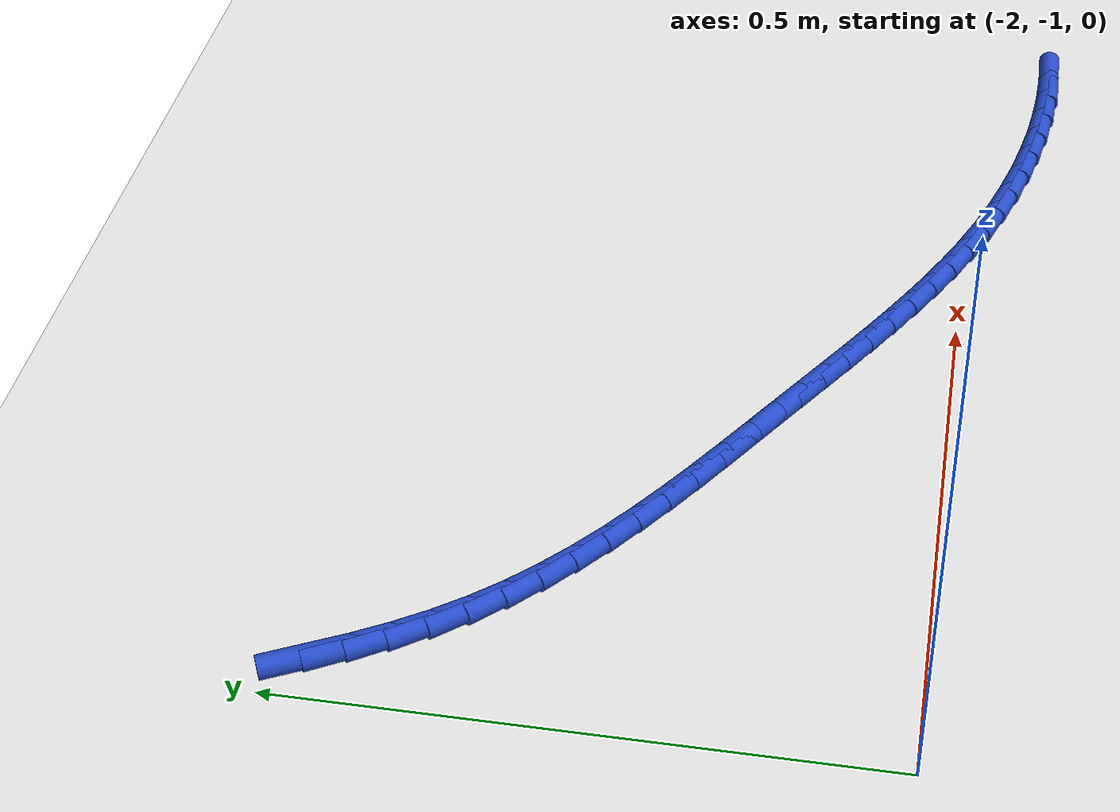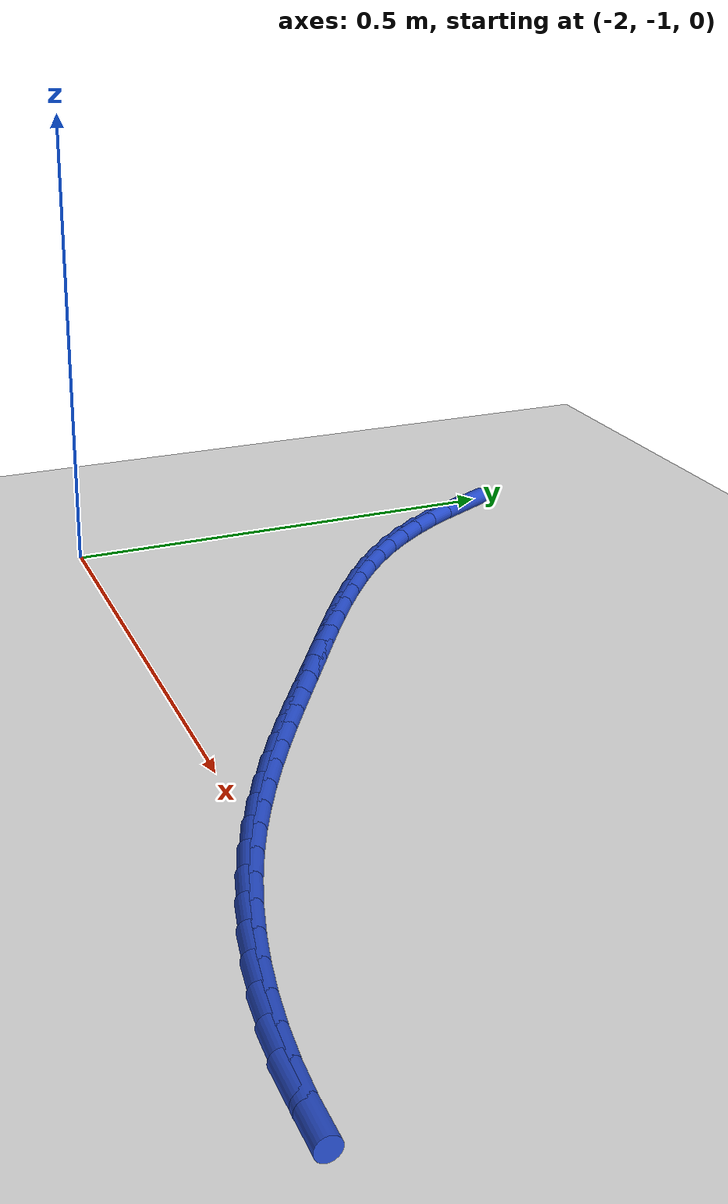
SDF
<sdf version="1.6">
 <world name="default">
  <model name="ground_plane">
   <static>1</static>
   <link name="link">
    <collision name="collision">
     <geometry><plane><normal>0 0 1</normal><size>100 100</size></plane></geometry>
     <surface><friction><ode><mu>100</mu><mu2>50</mu2></ode></friction></surface>
    </collision>
    <visual name="visual">
     <cast_shadows>0</cast_shadows>
     <geometry><plane><normal>0 0 1</normal><size>100 100</size></plane></geometry>
     <material>
      <script><uri>file://media/materials/scripts/gazebo.material</uri><name>Gazebo/WhiteGlow</name></script>
     </material>
    </visual>
   </link>
  </model>
  <model name="line">
   <link name="link_116">
    <pose>-1.9663221002431321 -0.5334056263789965 0.01 0 1.57 -1.1102286026004207</pose>
    <collision name="collision">
     <geometry><cylinder><radius>0.01</radius><length>0.08</length></cylinder></geometry>
    </collision>
    <visual name="visual">
     <material>
      <script><name>Gazebo/Blue</name><uri>file://media/materials/scripts/gazebo.material</uri></script>
     </material>
     <geometry><cylinder><radius>0.01</radius><length>0.08</length></cylinder></geometry>
    </visual>
   </link>
   <link name="link_117">
    <pose>-1.9516918608107332 -0.5628927996063288 0.01 0 1.57 -1.0625255551380273</pose>
    <collision name="collision">
     <geometry><cylinder><radius>0.01</radius><length>0.08</length></cylinder></geometry>
    </collision>
    <visual name="visual">
     <material>
      <script><name>Gazebo/Blue</name><uri>file://media/materials/scripts/gazebo.material</uri></script>
     </material>
     <geometry><cylinder><radius>0.01</radius><length>0.08</length></cylinder></geometry>
    </visual>
   </link>
   <link name="link_118">
    <pose>-1.935790195936213 -0.5914369249244833 0.01 0 1.57 -1.0083492888405508</pose>
    <collision name="collision">
     <geometry><cylinder><radius>0.01</radius><length>0.08</length></cylinder></geometry>
    </collision>
    <visual name="visual">
     <material>
      <script><name>Gazebo/Blue</name><uri>file://media/materials/scripts/gazebo.material</uri></script>
     </material>
     <geometry><cylinder><radius>0.01</radius><length>0.08</length></cylinder></geometry>
    </visual>
   </link>
   <link name="link_119">
    <pose>-1.9184817050391898 -0.6188948700350574 0.01 0 1.57 -0.947624956944892</pose>
    <collision name="collision">
     <geometry><cylinder><radius>0.01</radius><length>0.08</length></cylinder></geometry>
    </collision>
    <visual name="visual">
     <material>
      <script><name>Gazebo/Blue</name><uri>file://media/materials/scripts/gazebo.material</uri></script>
     </material>
     <geometry><cylinder><radius>0.01</radius><length>0.08</length></cylinder></geometry>
    </visual>
   </link>
   <link name="link_120">
    <pose>-1.8996309875392838 -0.6451235026396476 0.01 0 1.57 -0.8809741290524931</pose>
    <collision name="collision">
     <geometry><cylinder><radius>0.01</radius><length>0.08</length></cylinder></geometry>
    </collision>
    <visual name="visual">
     <material>
      <script><name>Gazebo/Blue</name><uri>file://media/materials/scripts/gazebo.material</uri></script>
     </material>
     <geometry><cylinder><radius>0.01</radius><length>0.08</length></cylinder></geometry>
    </visual>
   </link>
   <link name="link_121">
    <pose>-1.8791148276909557 -0.6699904529577766 0.01 0 1.57 -0.8161473780593897</pose>
    <collision name="collision">
     <geometry><cylinder><radius>0.01</radius><length>0.08</length></cylinder></geometry>
    </collision>
    <visual name="visual">
     <material>
      <script><name>Gazebo/Blue</name><uri>file://media/materials/scripts/gazebo.material</uri></script>
     </material>
     <geometry><cylinder><radius>0.01</radius><length>0.08</length></cylinder></geometry>
    </visual>
   </link>
   <link name="link_122">
    <pose>-1.8569885688783503 -0.6935210674077622 0.01 0 1.57 -0.7591188214419815</pose>
    <collision name="collision">
     <geometry><cylinder><radius>0.01</radius><length>0.08</length></cylinder></geometry>
    </collision>
    <visual name="visual">
     <material>
      <script><name>Gazebo/Blue</name><uri>file://media/materials/scripts/gazebo.material</uri></script>
     </material>
     <geometry><cylinder><radius>0.01</radius><length>0.08</length></cylinder></geometry>
    </visual>
   </link>
   <link name="link_123">
    <pose>-1.833443110592973 -0.7158604252606421 0.01 0 1.57 -0.7101233688214338</pose>
    <collision name="collision">
     <geometry><cylinder><radius>0.01</radius><length>0.08</length></cylinder></geometry>
    </collision>
    <visual name="visual">
     <material>
      <script><name>Gazebo/Blue</name><uri>file://media/materials/scripts/gazebo.material</uri></script>
     </material>
     <geometry><cylinder><radius>0.01</radius><length>0.08</length></cylinder></geometry>
    </visual>
   </link>
   <link name="link_124">
    <pose>-1.8086727313515742 -0.737156590384311 0.01 0 1.57 -0.6690484456155206</pose>
    <collision name="collision">
     <geometry><cylinder><radius>0.01</radius><length>0.08</length></cylinder></geometry>
    </collision>
    <visual name="visual">
     <material>
      <script><name>Gazebo/Blue</name><uri>file://media/materials/scripts/gazebo.material</uri></script>
     </material>
     <geometry><cylinder><radius>0.01</radius><length>0.08</length></cylinder></geometry>
    </visual>
   </link>
   <link name="link_125">
    <pose>-1.782871709670905 -0.757557626646664 0.01 0 1.57 -0.6356693534546746</pose>
    <collision name="collision">
     <geometry><cylinder><radius>0.01</radius><length>0.08</length></cylinder></geometry>
    </collision>
    <visual name="visual">
     <material>
      <script><name>Gazebo/Blue</name><uri>file://media/materials/scripts/gazebo.material</uri></script>
     </material>
     <geometry><cylinder><radius>0.01</radius><length>0.08</length></cylinder></geometry>
    </visual>
   </link>
   <link name="link_126">
    <pose>-1.7562343240677172 -0.7772115979155965 0.01 0 1.57 -0.609724940231829</pose>
    <collision name="collision">
     <geometry><cylinder><radius>0.01</radius><length>0.08</length></cylinder></geometry>
    </collision>
    <visual name="visual">
     <material>
      <script><name>Gazebo/Blue</name><uri>file://media/materials/scripts/gazebo.material</uri></script>
     </material>
     <geometry><cylinder><radius>0.01</radius><length>0.08</length></cylinder></geometry>
    </visual>
   </link>
   <link name="link_127">
    <pose>-1.72895485305876 -0.7962665680590029 0.01 0 1.57 -0.5909724690576728</pose>
    <collision name="collision">
     <geometry><cylinder><radius>0.01</radius><length>0.08</length></cylinder></geometry>
    </collision>
    <visual name="visual">
     <material>
      <script><name>Gazebo/Blue</name><uri>file://media/materials/scripts/gazebo.material</uri></script>
     </material>
     <geometry><cylinder><radius>0.01</radius><length>0.08</length></cylinder></geometry>
    </visual>
   </link>
   <link name="link_128">
    <pose>-1.7012275751607848 -0.8148706009447784 0.01 0 1.57 -0.5792248925024127</pose>
    <collision name="collision">
     <geometry><cylinder><radius>0.01</radius><length>0.08</length></cylinder></geometry>
    </collision>
    <visual name="visual">
     <material>
      <script><name>Gazebo/Blue</name><uri>file://media/materials/scripts/gazebo.material</uri></script>
     </material>
     <geometry><cylinder><radius>0.01</radius><length>0.08</length></cylinder></geometry>
    </visual>
   </link>
   <link name="link_129">
    <pose>-1.6732467688905428 -0.833171760440818 0.01 0 1.57 -0.5743748180818201</pose>
    <collision name="collision">
     <geometry><cylinder><radius>0.01</radius><length>0.08</length></cylinder></geometry>
    </collision>
    <visual name="visual">
     <material>
      <script><name>Gazebo/Blue</name><uri>file://media/materials/scripts/gazebo.material</uri></script>
     </material>
     <geometry><cylinder><radius>0.01</radius><length>0.08</length></cylinder></geometry>
    </visual>
   </link>
   <link name="link_130">
    <pose>-1.6452067127647845 -0.851318110415017 0.01 0 1.57 -0.5759418337209651</pose>
    <collision name="collision">
     <geometry><cylinder><radius>0.01</radius><length>0.08</length></cylinder></geometry>
    </collision>
    <visual name="visual">
     <material>
      <script><name>Gazebo/Blue</name><uri>file://media/materials/scripts/gazebo.material</uri></script>
     </material>
     <geometry><cylinder><radius>0.01</radius><length>0.08</length></cylinder></geometry>
    </visual>
   </link>
   <link name="link_131">
    <pose>-1.6172901251054614 -0.8694466868633914 0.01 0 1.57 -0.5774529924966286</pose>
    <collision name="collision">
     <geometry><cylinder><radius>0.01</radius><length>0.08</length></cylinder></geometry>
    </collision>
    <visual name="visual">
     <material>
      <script><name>Gazebo/Blue</name><uri>file://media/materials/scripts/gazebo.material</uri></script>
     </material>
     <geometry><cylinder><radius>0.01</radius><length>0.08</length></cylinder></geometry>
    </visual>
   </link>
   <link name="link_132">
    <pose>-1.5895185778490388 -0.887540799852279 0.01 0 1.57 -0.5740911466398041</pose>
    <collision name="collision">
     <geometry><cylinder><radius>0.01</radius><length>0.08</length></cylinder></geometry>
    </collision>
    <visual name="visual">
     <material>
      <script><name>Gazebo/Blue</name><uri>file://media/materials/scripts/gazebo.material</uri></script>
     </material>
     <geometry><cylinder><radius>0.01</radius><length>0.08</length></cylinder></geometry>
    </visual>
   </link>
   <link name="link_133">
    <pose>-1.5617953764034023 -0.9054709388470383 0.01 0 1.57 -0.5656910185909042</pose>
    <collision name="collision">
     <geometry><cylinder><radius>0.01</radius><length>0.08</length></cylinder></geometry>
    </collision>
    <visual name="visual">
     <material>
      <script><name>Gazebo/Blue</name><uri>file://media/materials/scripts/gazebo.material</uri></script>
     </material>
     <geometry><cylinder><radius>0.01</radius><length>0.08</length></cylinder></geometry>
    </visual>
   </link>
   <link name="link_134">
    <pose>-1.5340211000880637 -0.9231049927553548 0.01 0 1.57 -0.5522101908381599</pose>
    <collision name="collision">
     <geometry><cylinder><radius>0.01</radius><length>0.08</length></cylinder></geometry>
    </collision>
    <visual name="visual">
     <material>
      <script><name>Gazebo/Blue</name><uri>file://media/materials/scripts/gazebo.material</uri></script>
     </material>
     <geometry><cylinder><radius>0.01</radius><length>0.08</length></cylinder></geometry>
    </visual>
   </link>
   <link name="link_135">
    <pose>-1.506096328222536 -0.9403108504849131 0.01 0 1.57 -0.5336258760944623</pose>
    <collision name="collision">
     <geometry><cylinder><radius>0.01</radius><length>0.08</length></cylinder></geometry>
    </collision>
    <visual name="visual">
     <material>
      <script><name>Gazebo/Blue</name><uri>file://media/materials/scripts/gazebo.material</uri></script>
     </material>
     <geometry><cylinder><radius>0.01</radius><length>0.08</length></cylinder></geometry>
    </visual>
   </link>
   <link name="link_136">
    <pose>-1.4779216401263322 -0.9569564009433986 0.01 0 1.57 -0.509945793566524</pose>
    <collision name="collision">
     <geometry><cylinder><radius>0.01</radius><length>0.08</length></cylinder></geometry>
    </collision>
    <visual name="visual">
     <material>
      <script><name>Gazebo/Blue</name><uri>file://media/materials/scripts/gazebo.material</uri></script>
     </material>
     <geometry><cylinder><radius>0.01</radius><length>0.08</length></cylinder></geometry>
    </visual>
   </link>
   <link name="link_137">
    <pose>-1.4493976151189647 -0.9729095330384961 0.01 0 1.57 -0.48122277226536186</pose>
    <collision name="collision">
     <geometry><cylinder><radius>0.01</radius><length>0.08</length></cylinder></geometry>
    </collision>
    <visual name="visual">
     <material>
      <script><name>Gazebo/Blue</name><uri>file://media/materials/scripts/gazebo.material</uri></script>
     </material>
     <geometry><cylinder><radius>0.01</radius><length>0.08</length></cylinder></geometry>
    </visual>
   </link>
   <link name="link_138">
    <pose>-1.4204248325199464 -0.988038135677891 0.01 0 1.57 -0.44757230692807193</pose>
    <collision name="collision">
     <geometry><cylinder><radius>0.01</radius><length>0.08</length></cylinder></geometry>
    </collision>
    <visual name="visual">
     <material>
      <script><name>Gazebo/Blue</name><uri>file://media/materials/scripts/gazebo.material</uri></script>
     </material>
     <geometry><cylinder><radius>0.01</radius><length>0.08</length></cylinder></geometry>
    </visual>
   </link>
   <link name="link_139">
    <pose>-1.3909038716487903 -1.002210097769268 0.01 0 1.57 -0.4091915574989332</pose>
    <collision name="collision">
     <geometry><cylinder><radius>0.01</radius><length>0.08</length></cylinder></geometry>
    </collision>
    <visual name="visual">
     <material>
      <script><name>Gazebo/Blue</name><uri>file://media/materials/scripts/gazebo.material</uri></script>
     </material>
     <geometry><cylinder><radius>0.01</radius><length>0.08</length></cylinder></geometry>
    </visual>
   </link>
   <link name="link_140">
    <pose>-1.3607353123240358 -1.0152933083932871 0.01 0 1.57 -0.3671370733647287</pose>
    <collision name="collision">
     <geometry><cylinder><radius>0.01</radius><length>0.08</length></cylinder></geometry>
    </collision>
    <visual name="visual">
     <material>
      <script><name>Gazebo/Blue</name><uri>file://media/materials/scripts/gazebo.material</uri></script>
     </material>
     <geometry><cylinder><radius>0.01</radius><length>0.08</length></cylinder></geometry>
    </visual>
   </link>
   <link name="link_141">
    <pose>-1.3298565973583372 -1.0271684342126013 0.01 0 1.57 -0.3243304770552814</pose>
    <collision name="collision">
     <geometry><cylinder><radius>0.01</radius><length>0.08</length></cylinder></geometry>
    </collision>
    <visual name="visual">
     <material>
      <script><name>Gazebo/Blue</name><uri>file://media/materials/scripts/gazebo.material</uri></script>
     </material>
     <geometry><cylinder><radius>0.01</radius><length>0.08</length></cylinder></geometry>
    </visual>
   </link>
   <link name="link_142">
    <pose>-1.2983422146251486 -1.0377636449357606 0.01 0 1.57 -0.2811580854626884</pose>
    <collision name="collision">
     <geometry><cylinder><radius>0.01</radius><length>0.08</length></cylinder></geometry>
    </collision>
    <visual name="visual">
     <material>
      <script><name>Gazebo/Blue</name><uri>file://media/materials/scripts/gazebo.material</uri></script>
     </material>
     <geometry><cylinder><radius>0.01</radius><length>0.08</length></cylinder></geometry>
    </visual>
   </link>
   <link name="link_143">
    <pose>-1.2662984927485494 -1.0470181470254254 0.01 0 1.57 -0.23732027915869863</pose>
    <collision name="collision">
     <geometry><cylinder><radius>0.01</radius><length>0.08</length></cylinder></geometry>
    </collision>
    <visual name="visual">
     <material>
      <script><name>Gazebo/Blue</name><uri>file://media/materials/scripts/gazebo.material</uri></script>
     </material>
     <geometry><cylinder><radius>0.01</radius><length>0.08</length></cylinder></geometry>
    </visual>
   </link>
   <link name="link_144">
    <pose>-1.2338317603526192 -1.0548711469442575 0.01 0 1.57 -0.192522695612911</pose>
    <collision name="collision">
     <geometry><cylinder><radius>0.01</radius><length>0.08</length></cylinder></geometry>
    </collision>
    <visual name="visual">
     <material>
      <script><name>Gazebo/Blue</name><uri>file://media/materials/scripts/gazebo.material</uri></script>
     </material>
     <geometry><cylinder><radius>0.01</radius><length>0.08</length></cylinder></geometry>
    </visual>
   </link>
   <link name="link_145">
    <pose>-1.2010483460614367 -1.061261851154917 0.01 0 1.57 -0.14647474690176682</pose>
    <collision name="collision">
     <geometry><cylinder><radius>0.01</radius><length>0.08</length></cylinder></geometry>
    </collision>
    <visual name="visual">
     <material>
      <script><name>Gazebo/Blue</name><uri>file://media/materials/scripts/gazebo.material</uri></script>
     </material>
     <geometry><cylinder><radius>0.01</radius><length>0.08</length></cylinder></geometry>
    </visual>
   </link>
   <link name="link_146">
    <pose>-1.1680545784990812 -1.066129466120065 0.01 0 1.57 -0.09888941164668524</pose>
    <collision name="collision">
     <geometry><cylinder><radius>0.01</radius><length>0.08</length></cylinder></geometry>
    </collision>
    <visual name="visual">
     <material>
      <script><name>Gazebo/Blue</name><uri>file://media/materials/scripts/gazebo.material</uri></script>
     </material>
     <geometry><cylinder><radius>0.01</radius><length>0.08</length></cylinder></geometry>
    </visual>
   </link>
   <link name="link_147">
    <pose>-1.134956786289632 -1.0694131983023625 0.01 0 1.57 -0.04948462354865255</pose>
    <collision name="collision">
     <geometry><cylinder><radius>0.01</radius><length>0.08</length></cylinder></geometry>
    </collision>
    <visual name="visual">
     <material>
      <script><name>Gazebo/Blue</name><uri>file://media/materials/scripts/gazebo.material</uri></script>
     </material>
     <geometry><cylinder><radius>0.01</radius><length>0.08</length></cylinder></geometry>
    </visual>
   </link>
   <link name="link_148">
    <pose>-1.1018612980571685 -1.0710522541644707 0.01 0 1.57 0.002013344540177092</pose>
    <collision name="collision">
     <geometry><cylinder><radius>0.01</radius><length>0.08</length></cylinder></geometry>
    </collision>
    <visual name="visual">
     <material>
      <script><name>Gazebo/Blue</name><uri>file://media/materials/scripts/gazebo.material</uri></script>
     </material>
     <geometry><cylinder><radius>0.01</radius><length>0.08</length></cylinder></geometry>
    </visual>
   </link>
  </model>
 </world>
</sdf>
